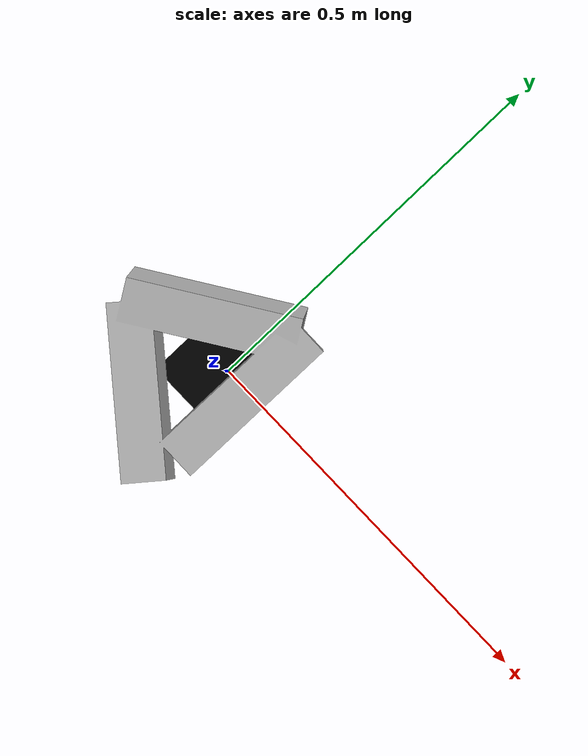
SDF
<?xml version='1.0'?>
<sdf version='1.5'>
  <model name='tag4_prism'>
    <static>true</static>
    <link name="tag4_prism_link">

        <visual name="visual_ar_tag4_prism">
        <geometry>
                <mesh>
                    <uri>model://Tag4_prism/meshes/tag4_prism.dae</uri>
                </mesh>
            </geometry>
        </visual>
         <collision name="collision_ar_tag4_prism">
                <geometry>
                <mesh>
                    <uri>model://Tag4_prism/meshes/tag4_prism.dae</uri>
                </mesh>
            </geometry>
        </collision>

    </link>
  </model>
</sdf>
~
